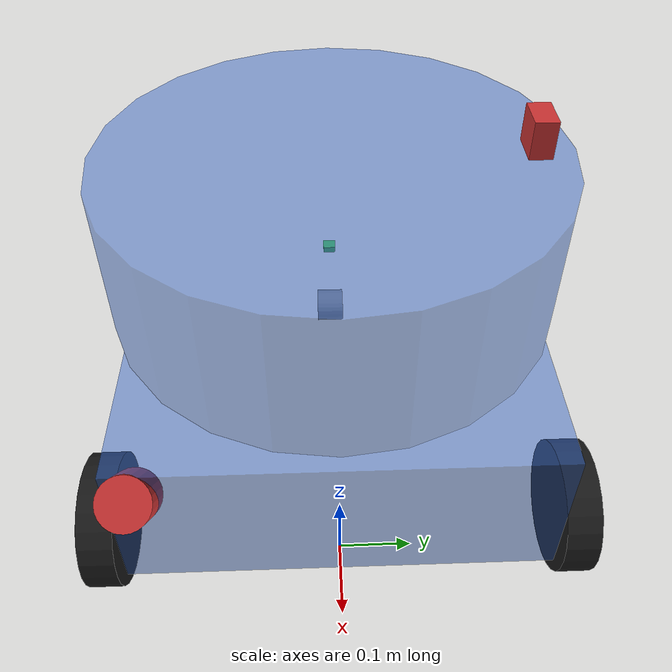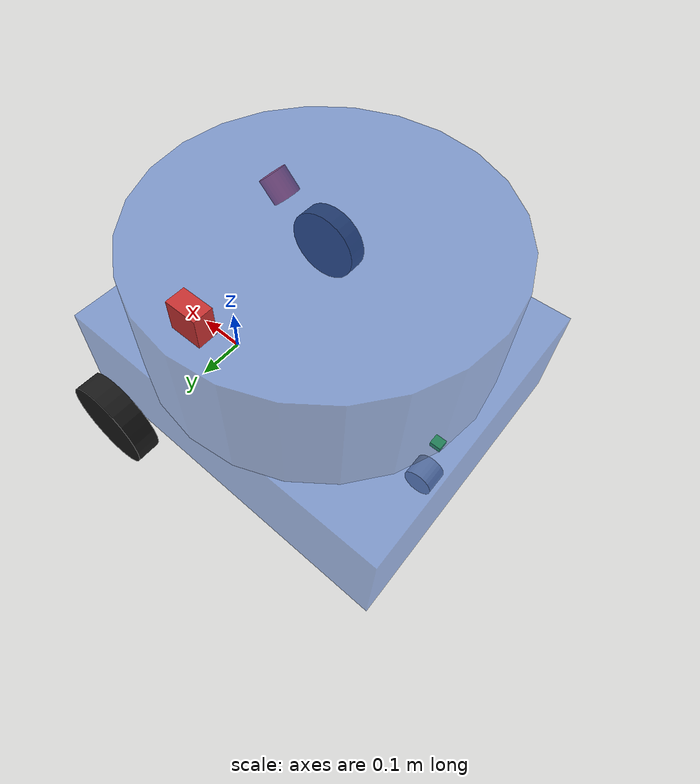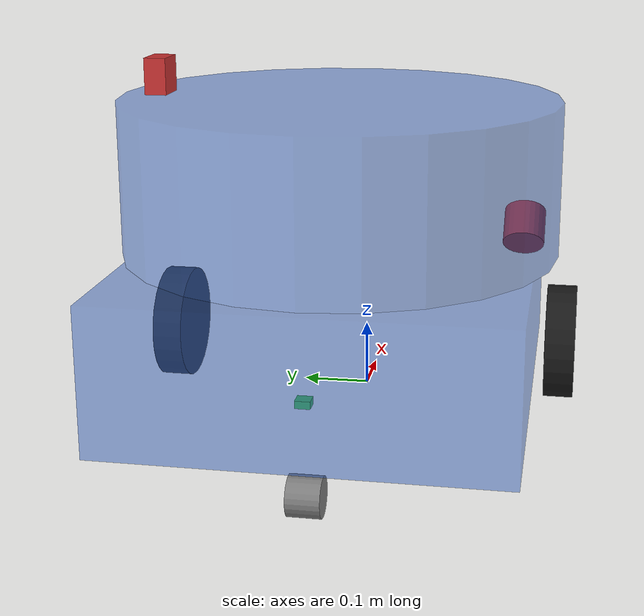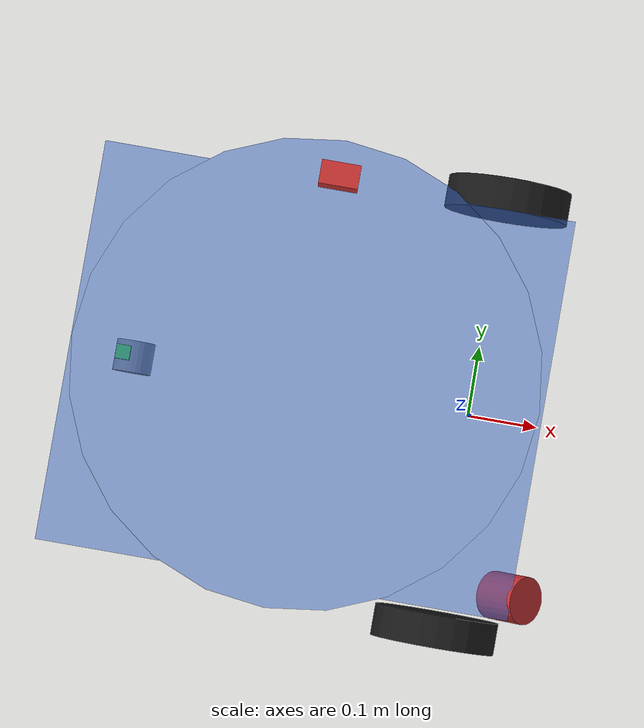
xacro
<?xml version="1.0"?>
<robot name="agrobot" xmlns:xacro="http://www.ros.org/wiki/xacro">

    <!-- XACRO参数：可以在launch文件中传递 -->
    <xacro:arg name="controllers_file" default=""/>

    <!-- 获取参数值 -->
    <xacro:property name="use_gazebo" value="$(arg use_gazebo)"/>
    <xacro:property name="controllers_file" value="$(arg controllers_file)"/>

    <!-- ======================== 常用颜色 ======================== -->
    <material name="orange"><color rgba="1.0 0.5 0.2 1.0"/></material>
    <material name="gray"><color rgba="0.5 0.5 0.5 1.0"/></material>
    <material name="dark_gray"><color rgba="0.3 0.3 0.3 1.0"/></material>
    <material name="blue"><color rgba="0.2 0.4 0.8 0.5"/></material>
    <material name="black"><color rgba="0.1 0.1 0.1 1.0"/></material>
    <material name="red"><color rgba="0.8 0.2 0.2 1.0"/></material>
    <material name="green"><color rgba="0.2 0.8 0.2 1.0"/></material>
    <material name="white"><color rgba="0.9 0.9 0.9 1.0"/></material>
    <material name="silver"><color rgba="0.7 0.7 0.7 1.0"/></material>

    <!-- ======================== 几何/安装参数 ======================== -->
    <xacro:property name="M_PI" value="3.14159265359"/>

    <!-- 车体盒子尺寸 -->
    <xacro:property name="vehicle_length" value="0.640"/>
    <xacro:property name="vehicle_width" value="0.542"/>
    <xacro:property name="vehicle_height" value="0.2"/>

    <!-- 轮子 -->
    <xacro:property name="wheel_radius" value="0.0875"/>
    <xacro:property name="wheel_length" value="0.045"/>
    <xacro:property name="wheel_offset_z" value="${vehicle_height/2}"/>
    <!-- 轮子相对车体中心的X偏移 -->
    <xacro:property name="wheel_offset_x" value="0.236"/>
    <xacro:property name="wheel_offset_y" value="0.306"/>
    <xacro:property name="wheel_separation" value="${2 * wheel_offset_y}"/>

    <!-- 车体几何中心（外壳）相对于运动学中心（base_link/轮轴）的偏移 -->
    <xacro:property name="chassis_offset_x" value="${-wheel_offset_x}"/>

    <!-- base_link 距离地面的高度：一半车高 + 轮子半径-->
    <xacro:property name="base_z_origin" value="${wheel_radius + vehicle_height/2}"/>

    <!-- 车体中间层尺寸 -->
    <xacro:property name="middle_radius" value="0.300"/>
    <xacro:property name="middle_height" value="0.21"/>

    <!-- 万向轮 -->
    <xacro:property name="caster_radius" value="0.0275"/>
    <xacro:property name="caster_length" value="0.045"/>
    <xacro:property name="caster_offset_z" value="${base_z_origin - caster_radius}"/>
    <xacro:property name="caster_offset_y" value="0"/>
    <xacro:property name="caster_offset_x" value="-0.25"/>

    <!-- 单目摄像头 -->
    <xacro:property name="camera_length" value="0.05"/>
    <xacro:property name="camera_width" value="0.05"/>
    <xacro:property name="camera_height" value="0.03"/>
    <xacro:property name="cam_offset_x" value="0"/>
    <xacro:property name="cam_offset_y" value="${vehicle_width/2 - 0.02}"/>
    <xacro:property name="cam_offset_z" value="${vehicle_height/2 + middle_height + 0.025}"/>
    <xacro:property name="cam_offset_yaw" value="${M_PI/2}"/>

    <!-- 激光雷达 -->
    <xacro:property name="lidar_radius" value="0.0325"/>
    <xacro:property name="lidar_length" value="0.06"/>
    <xacro:property name="lidar_offset_x" value="0.320"/>
    <xacro:property name="lidar_offset_y" value="0.241"/>
    <xacro:property name="lidar_offset_z" value="${-vehicle_height/2 + 0.16}"/>

    <!-- IMU -->
    <xacro:property name="imu_offset_x" value="0.257"/>
    <xacro:property name="imu_offset_y" value="0"/>
    <xacro:property name="imu_offset_z" value="0.03"/>
    <!-- ======================== 通用宏 ======================== -->
    <!-- 轮子宏 -->
    <xacro:macro name="wheel_link" params="name parent_link x_offset y_offset z_offset">
        <link name="${name}_wheel_link">
            <visual>
                <origin xyz="0 0 0" rpy="${M_PI/2} 0 0"/>
                <geometry>
                    <cylinder length="${wheel_length}" radius="${wheel_radius}"/>
                </geometry>
                <material name="black"/>
            </visual>
            <collision>
                <origin xyz="0 0 0" rpy="${M_PI/2} 0 0"/>
                <geometry>
                    <cylinder length="${wheel_length}" radius="${wheel_radius}"/>
                </geometry>
            </collision>
            <inertial>
                <origin xyz="0 0 0" rpy="${M_PI/2} 0 0"/>
                <mass value="5.0"/>
                <inertia ixx="${5.0*(3*wheel_radius*wheel_radius + wheel_length*wheel_length)/12}" ixy="0" ixz="0" iyy="${5.0*(3*wheel_radius*wheel_radius + wheel_length*wheel_length)/12}" iyz="0" izz="${5.0*wheel_radius*wheel_radius/2}"/>
            </inertial>
        </link>

        <joint name="${name}_wheel_joint" type="continuous">
            <parent link="${parent_link}"/>
            <child link="${name}_wheel_link"/>
            <origin xyz="${x_offset} ${y_offset} ${z_offset}" rpy="0 0 0"/>
            <axis xyz="0 1 0"/>
            <limit effort="10000.0" velocity="1000.0"/>
            <dynamics damping="0.0" friction="0.0"/>
        </joint>
    </xacro:macro>

    <!-- 万向轮宏 -->
    <xacro:macro name="caster_link" params="name parent_link x_offset_caster y_offset_caster z_offset_caster">
        <link name="${name}_caster_link">
            <visual>
                <origin xyz="0 0 0" rpy="${M_PI/2} 0 0"/>
                <geometry>
                    <cylinder length="${caster_length}" radius="${caster_radius}"/>
                </geometry>
                <material name="gray"/>
            </visual>
            <collision>
                <origin xyz="0 0 0" rpy="0 0 0"/>
                <geometry>
                    <sphere radius="${caster_radius}"/>
                </geometry>
            </collision>
            <inertial>
                <origin xyz="0 0 0" rpy="0 0 0"/>
                <mass value="0.1"/>
                <inertia ixx="${0.4*0.1*caster_radius*caster_radius}" ixy="0" ixz="0" iyy="${0.4*0.1*caster_radius*caster_radius}" iyz="0" izz="${0.4*0.1*caster_radius*caster_radius}"/>
            </inertial>
        </link>
        <joint name="${name}_caster_joint" type="fixed">
            <parent link="${parent_link}"/>
            <child link="${name}_caster_link"/>
            <origin xyz="${x_offset_caster} ${y_offset_caster} ${z_offset_caster}" rpy="0 0 0"/>
        </joint>
    </xacro:macro>

    <!-- 激光雷达宏 -->
    <xacro:macro name="laser_link" params="name x_offset_laser y_offset_laser z_offset_laser pitch_offset_laser yaw_offset_laser">
        <link name="${name}_laser_link">
            <visual>
                <origin xyz="0 0 0" rpy="0 0 0"/>
                <geometry>
                    <cylinder length="${lidar_length}" radius="${lidar_radius}"/>
                </geometry>
                <material name="red"/>
            </visual>
            <collision>
                <geometry>
                    <cylinder length="${lidar_length}" radius="${lidar_radius}"/>
                </geometry>
            </collision>
            <inertial>
                <mass value="0.05"/>
                <inertia ixx="${0.1*(3*lidar_radius*lidar_radius + lidar_length*lidar_length)/12}" ixy="0" ixz="0" iyy="${0.1*(3*lidar_radius*lidar_radius + lidar_length*lidar_length)/12}" iyz="0" izz="${0.1*lidar_radius*lidar_radius/2}"/>
            </inertial>
        </link>
        <joint name="${name}_laser_joint" type="fixed">
            <!-- 挂载在车体中心 -->
            <parent link="chassis_link"/>
            <child link="${name}_laser_link"/>
            <origin xyz="${x_offset_laser} ${y_offset_laser} ${z_offset_laser}" rpy="0 ${pitch_offset_laser} ${yaw_offset_laser}" />
        </joint>
    </xacro:macro>

    <!-- 摄像头宏 -->
    <xacro:macro name="camera_link" params="name x_offset_camera y_offset_camera z_offset_camera yaw_offset_camera">
        <link name="${name}_camera">
            <visual>
                <geometry>
                    <box size="${camera_length} ${camera_width} ${camera_height}"/>
                </geometry>
                <material name="red"/>
            </visual>
            <collision>
                <geometry>
                    <box size="${camera_length} ${camera_width} ${camera_height}"/>
                </geometry>
            </collision>
            <inertial>
                <mass value="0.05"/>
                <inertia ixx="${0.05*(camera_width*camera_width + camera_height*camera_height)/12}" ixy="0" ixz="0" iyy="${0.05*(camera_length*camera_length + camera_height*camera_height)/12}" iyz="0" izz="${0.05*(camera_length*camera_length + camera_width*camera_width)/12}"/>
            </inertial>
        </link>
        <!-- 关节名加上前缀防止重名，挂载在车体中心 -->
        <joint name="${name}_camera_joint" type="fixed">
            <parent link="chassis_link"/>
            <child link="${name}_camera"/>
            <origin xyz="${x_offset_camera} ${y_offset_camera} ${z_offset_camera}" rpy="0 ${M_PI/2} ${yaw_offset_camera}"/>
        </joint>
    </xacro:macro>

    <!-- ======================== 车体结构 (核心分离部分) ======================== -->
    <link name="base_footprint"/>

    <!-- 1. base_link: 纯粹的运动学中心，无质量无外观 -->
    <joint name="base_joint" type="fixed">
        <parent link="base_footprint"/>
        <child link="base_link"/>
        <origin xyz="0 0 ${base_z_origin}" rpy="0 0 0"/>
    </joint>
    <link name="base_link" />

    <!-- 2. chassis_link: 物理车壳，挂在 base_link 后面 -->
    <joint name="chassis_joint" type="fixed">
        <parent link="base_link"/>
        <child link="chassis_link"/>
        <origin xyz="${chassis_offset_x} 0 0" rpy="0 0 0"/>
    </joint>
    <link name="chassis_link">
        <visual>
            <geometry>
                <box size="${vehicle_length} ${vehicle_width} ${vehicle_height}"/>
            </geometry>
            <material name="blue"/>
        </visual>
        <collision>
            <geometry>
                <box size="${vehicle_length} ${vehicle_width} ${vehicle_height}"/>
            </geometry>
        </collision>
        <inertial>
            <mass value="30"/>
            <inertia ixx="${(1/12)*30*(vehicle_width*vehicle_width + vehicle_height*vehicle_height)}" ixy="0" ixz="0" iyy="${(1/12)*30*(vehicle_length*vehicle_length + vehicle_height*vehicle_height)}" iyz="0" izz="${(1/12)*30*(vehicle_length*vehicle_length + vehicle_width*vehicle_width)}"/>
        </inertial>
    </link>

    <!-- 中间层，挂在 chassis_link 上 -->
    <joint name="base_middle_joint" type="fixed">
        <parent link="chassis_link"/>
        <child link="base_middle_link"/>
        <origin xyz="0 0 ${vehicle_height/2+middle_height/2}" rpy="0 0 0"/>
    </joint>
    <link name="base_middle_link">
        <visual>
            <geometry>
                <cylinder radius="${middle_radius}" length="${middle_height}"/>
            </geometry>
            <material name="blue"/>
        </visual>
        <collision>
            <geometry>
                <cylinder radius="${middle_radius}" length="${middle_height}"/>
            </geometry>
        </collision>
        <inertial>
            <mass value="10"/>
            <inertia ixx="${(1/12)*10*(3*middle_radius*middle_radius + middle_height*middle_height)}"
                     ixy="0" ixz="0"
                     iyy="${(1/12)*10*(3*middle_radius*middle_radius + middle_height*middle_height)}"
                     iyz="0"
                     izz="${0.5*10*middle_radius*middle_radius}"/>
        </inertial>
    </link>

    <!-- ======================== IMU传感器 ======================== -->
    <link name="imu_link">
        <visual>
            <geometry><box size="0.02 0.02 0.01"/></geometry>
            <material name="green"/>
        </visual>
        <collision>
            <geometry><box size="0.02 0.02 0.01"/></geometry>
        </collision>
        <inertial>
            <mass value="0.01"/>
            <inertia ixx="1e-6" ixy="0" ixz="0" iyy="1e-6" iyz="0" izz="1e-6"/>
        </inertial>
    </link>

    <!-- IMU安装在机器人车体物理中心位置，因此挂在 chassis_link -->
    <joint name="imu_joint" type="fixed">
        <parent link="chassis_link"/>
        <child link="imu_link"/>
        <origin xyz="${-imu_offset_x} 0 ${-imu_offset_z}" rpy="0 0 0"/>
    </joint>

    <!-- ======================== 万向轮 ======================== -->
    <!-- 相对车壳测量，挂在 chassis_link -->
    <xacro:caster_link name="back" parent_link="chassis_link" x_offset_caster="${caster_offset_x}" y_offset_caster="${-caster_offset_y}" z_offset_caster="${-caster_offset_z}"/>

    <!-- ======================== 驱动轮 ======================== -->
    <!-- 挂在 base_link，并且 X_offset 传入 0，使其完美在 base_link 居中！ -->
    <xacro:wheel_link name="left" parent_link="base_link" x_offset="0" y_offset="${wheel_offset_y}" z_offset="${-wheel_offset_z}"/>
    <xacro:wheel_link name="right" parent_link="base_link" x_offset="0" y_offset="${-wheel_offset_y}" z_offset="${-wheel_offset_z}"/>

    <!-- ======================== 摄像头 ======================== -->
    <xacro:camera_link name="right" x_offset_camera="${cam_offset_x}" y_offset_camera="${cam_offset_y}" z_offset_camera="${cam_offset_z}" yaw_offset_camera="${cam_offset_yaw}"/>

    <!-- ======================== 激光雷达 ======================== -->
    <xacro:laser_link name="front" x_offset_laser="${lidar_offset_x}" y_offset_laser="${-lidar_offset_y}" z_offset_laser="${lidar_offset_z}" pitch_offset_laser="${M_PI/4}" yaw_offset_laser="0"/>

    <!-- ======================== ros2_control 配置 ======================== -->
    <ros2_control name="agrobot" type="system">
        <hardware>
            <plugin>robot_base/AgrobotHardwareInterface</plugin>
            <param name="serial_port_name">/dev/STM32</param>
            <param name="serial_baud_rate">115200</param>
            <param name="wheel_radius">${wheel_radius}</param>
            <param name="wheel_separation">${wheel_separation}</param>
            <param name="loop_rate">50</param>
            <param name="device_timeout">1000</param>
        </hardware>
        <joint name="left_wheel_joint">
            <command_interface name="velocity">
                <param name="min">-10.0</param>
                <param name="max">10.0</param>
            </command_interface>
            <state_interface name="position"/>
            <state_interface name="velocity"/>
        </joint>
        <joint name="right_wheel_joint">
            <command_interface name="velocity">
                <param name="min">-10.0</param>
                <param name="max">10.0</param>
            </command_interface>
            <state_interface name="position"/>
            <state_interface name="velocity"/>
        </joint>
    </ros2_control>
</robot>
